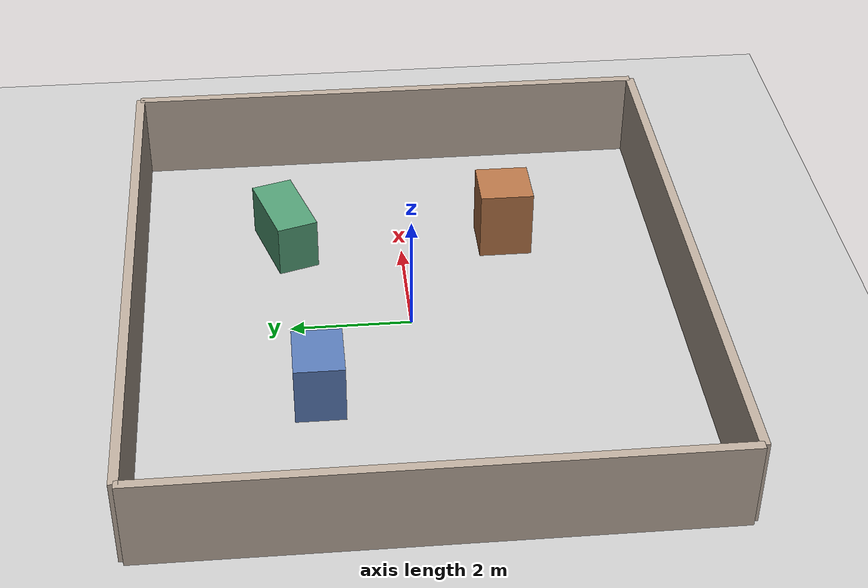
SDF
<sdf version='1.6'>
  <world name='ros2_indoor'>
    <include>
      <uri>model://sun</uri>
    </include>

    <include>
      <uri>model://ground_plane</uri>
    </include>

    <gravity>0 0 -9.8</gravity>

    <scene>
      <ambient>0.4 0.4 0.4 1.0</ambient>
      <background>0.8 0.8 0.8 1.0</background>
      <shadows>true</shadows>
    </scene>

    <physics name='default_physics' default='1' type='ode'>
      <max_step_size>0.001</max_step_size>
      <real_time_factor>1.0</real_time_factor>
      <real_time_update_rate>1000.0</real_time_update_rate>
    </physics>

    <model name='north_wall'>
      <static>true</static>
      <pose>0 4.5 0.75 0 0 0</pose>
      <link name='link'>
        <collision name='collision'>
          <geometry>
            <box>
              <size>10.0 0.15 1.5</size>
            </box>
          </geometry>
        </collision>
        <visual name='visual'>
          <geometry>
            <box>
              <size>10.0 0.15 1.5</size>
            </box>
          </geometry>
          <material>
            <ambient>0.74 0.68 0.62 1.0</ambient>
            <diffuse>0.74 0.68 0.62 1.0</diffuse>
          </material>
        </visual>
      </link>
    </model>

    <model name='south_wall'>
      <static>true</static>
      <pose>0 -4.5 0.75 0 0 0</pose>
      <link name='link'>
        <collision name='collision'>
          <geometry>
            <box>
              <size>10.0 0.15 1.5</size>
            </box>
          </geometry>
        </collision>
        <visual name='visual'>
          <geometry>
            <box>
              <size>10.0 0.15 1.5</size>
            </box>
          </geometry>
          <material>
            <ambient>0.74 0.68 0.62 1.0</ambient>
            <diffuse>0.74 0.68 0.62 1.0</diffuse>
          </material>
        </visual>
      </link>
    </model>

    <model name='east_wall'>
      <static>true</static>
      <pose>5.0 0 0.75 0 0 0</pose>
      <link name='link'>
        <collision name='collision'>
          <geometry>
            <box>
              <size>0.15 9.0 1.5</size>
            </box>
          </geometry>
        </collision>
        <visual name='visual'>
          <geometry>
            <box>
              <size>0.15 9.0 1.5</size>
            </box>
          </geometry>
          <material>
            <ambient>0.74 0.68 0.62 1.0</ambient>
            <diffuse>0.74 0.68 0.62 1.0</diffuse>
          </material>
        </visual>
      </link>
    </model>

    <model name='west_wall'>
      <static>true</static>
      <pose>-5.0 0 0.75 0 0 0</pose>
      <link name='link'>
        <collision name='collision'>
          <geometry>
            <box>
              <size>0.15 9.0 1.5</size>
            </box>
          </geometry>
        </collision>
        <visual name='visual'>
          <geometry>
            <box>
              <size>0.15 9.0 1.5</size>
            </box>
          </geometry>
          <material>
            <ambient>0.74 0.68 0.62 1.0</ambient>
            <diffuse>0.74 0.68 0.62 1.0</diffuse>
          </material>
        </visual>
      </link>
    </model>

    <model name='table_block'>
      <static>true</static>
      <pose>-1.8 1.6 0.5 0 0 0</pose>
      <link name='link'>
        <collision name='collision'>
          <geometry>
            <box>
              <size>1.0 0.8 1.0</size>
            </box>
          </geometry>
        </collision>
        <visual name='visual'>
          <geometry>
            <box>
              <size>1.0 0.8 1.0</size>
            </box>
          </geometry>
          <material>
            <ambient>0.35 0.48 0.72 1.0</ambient>
            <diffuse>0.35 0.48 0.72 1.0</diffuse>
          </material>
        </visual>
      </link>
    </model>

    <model name='cabinet_block'>
      <static>true</static>
      <pose>2.2 -1.8 0.6 0 0 0</pose>
      <link name='link'>
        <collision name='collision'>
          <geometry>
            <box>
              <size>0.9 0.9 1.2</size>
            </box>
          </geometry>
        </collision>
        <visual name='visual'>
          <geometry>
            <box>
              <size>0.9 0.9 1.2</size>
            </box>
          </geometry>
          <material>
            <ambient>0.72 0.46 0.28 1.0</ambient>
            <diffuse>0.72 0.46 0.28 1.0</diffuse>
          </material>
        </visual>
      </link>
    </model>

    <model name='sofa_block'>
      <static>true</static>
      <pose>2.3 2.0 0.45 0 0 0.3</pose>
      <link name='link'>
        <collision name='collision'>
          <geometry>
            <box>
              <size>1.4 0.7 0.9</size>
            </box>
          </geometry>
        </collision>
        <visual name='visual'>
          <geometry>
            <box>
              <size>1.4 0.7 0.9</size>
            </box>
          </geometry>
          <material>
            <ambient>0.32 0.62 0.46 1.0</ambient>
            <diffuse>0.32 0.62 0.46 1.0</diffuse>
          </material>
        </visual>
      </link>
    </model>
  </world>
</sdf>
